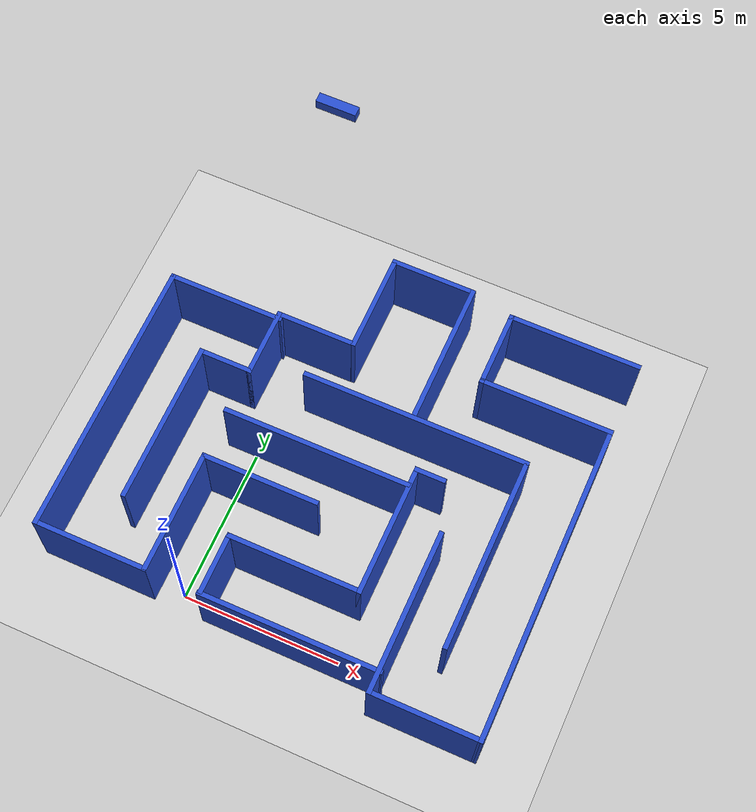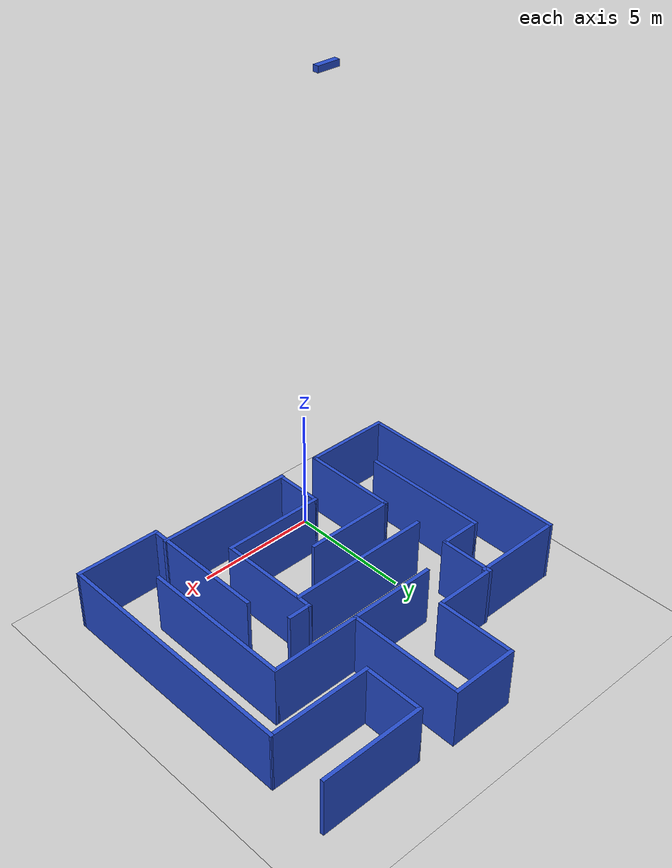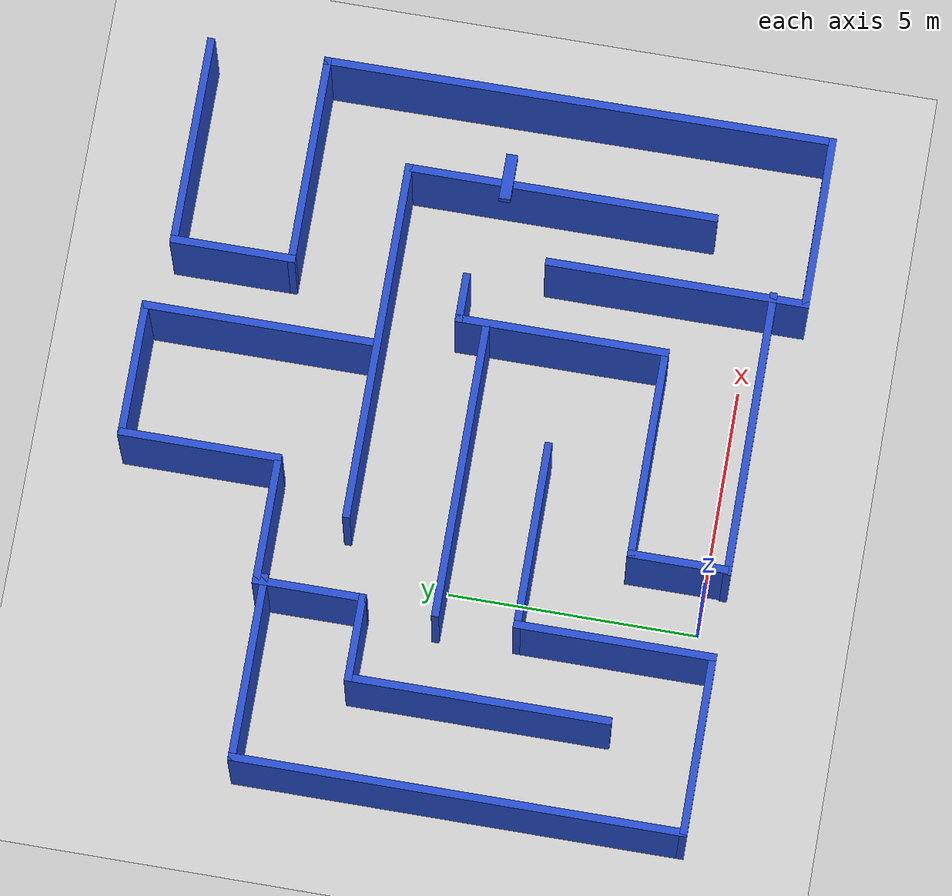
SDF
<sdf version="1.7">
 <world name="default">
  <light name="sun" type="directional">
   <cast_shadows>0</cast_shadows>
   <pose>0 0 10 0 -0 0</pose>
   <diffuse>0.8 0.8 0.8 1</diffuse>
   <specular>0.2 0.2 0.2 1</specular>
   <attenuation>
    <range>1000</range>
    <constant>0.9</constant>
    <linear>0.01</linear>
    <quadratic>0.001</quadratic>
   </attenuation>
   <direction>-0.5 0.1 -0.9</direction>
   <spot><inner_angle>0</inner_angle><outer_angle>0</outer_angle><falloff>0</falloff></spot>
  </light>
  <model name="ground_plane">
   <static>1</static>
   <link name="link">
    <collision name="collision">
     <geometry><plane><normal>0 0 1</normal><size>100 100</size></plane></geometry>
     <surface><friction><ode><mu>100</mu><mu2>50</mu2></ode></friction></surface>
    </collision>
    <visual name="visual">
     <cast_shadows>0</cast_shadows>
     <geometry><plane><normal>0 0 1</normal><size>100 100</size></plane></geometry>
     <material>
      <script><uri>file://media/materials/scripts/gazebo.material</uri><name>Gazebo/Grey</name></script>
     </material>
    </visual>
   </link>
  </model>
  <gravity>0 0 -9.8</gravity>
  <magnetic_field>6e-06 2.3e-05 -4.2e-05</magnetic_field>
  <atmosphere type="adiabatic"/>
  <physics type="ode">
   <max_step_size>0.001</max_step_size>
   <real_time_factor>1</real_time_factor>
   <real_time_update_rate>1000</real_time_update_rate>
  </physics>
  <scene><ambient>0 0 0.4 1</ambient><background>0.7 0.7 0.7 1</background><shadows>0</shadows></scene>
  <audio><device>default</device></audio>
  <spherical_coordinates>
   <surface_model>EARTH_WGS84</surface_model>
   <latitude_deg>0</latitude_deg>
   <longitude_deg>0</longitude_deg>
   <elevation>0</elevation>
   <heading_deg>0</heading_deg>
  </spherical_coordinates>
  <model name="maze">
   <pose>2.69462 5.36766 0 0 -0 0</pose>
   <link name="Wall_11">
    <collision name="Wall_11_Collision">
     <geometry><box><size>3.65748 0.15 2.5</size></box></geometry>
     <pose>0 0 1.25 0 -0 0</pose>
    </collision>
    <visual name="Wall_11_Visual">
     <pose>0 0 1.25 0 -0 0</pose>
     <geometry><box><size>3.65748 0.15 2.5</size></box></geometry>
     <material>
      <script><uri>file://media/materials/scripts/gazebo.material</uri><name>Gazebo/Blue</name></script>
      <ambient>1 1 1 1</ambient>
     </material>
     <meta><layer>0</layer></meta>
    </visual>
    <pose>-5.317 -5.72694 0 0 -0 0</pose>
   </link>
   <link name="Wall_14">
    <collision name="Wall_14_Collision">
     <geometry><box><size>4 0.15 2.5</size></box></geometry>
     <pose>0 0 1.25 0 -0 0</pose>
    </collision>
    <visual name="Wall_14_Visual">
     <pose>0 0 1.25 0 -0 0</pose>
     <geometry><box><size>4 0.15 2.5</size></box></geometry>
     <material>
      <script><uri>file://media/materials/scripts/gazebo.material</uri><name>Gazebo/Blue</name></script>
      <ambient>1 1 1 1</ambient>
     </material>
     <meta><layer>0</layer></meta>
    </visual>
    <pose>-3.56326 -3.80194 0 0 -0 1.5708</pose>
   </link>
   <link name="Wall_15">
    <collision name="Wall_15_Collision">
     <geometry><box><size>3.76148 0.15 2.5</size></box></geometry>
     <pose>0 0 1.25 0 -0 0</pose>
    </collision>
    <visual name="Wall_15_Visual">
     <pose>0 0 1.25 0 -0 0</pose>
     <geometry><box><size>3.76148 0.15 2.5</size></box></geometry>
     <material>
      <script><uri>file://media/materials/scripts/gazebo.material</uri><name>Gazebo/Blue</name></script>
      <ambient>1 1 1 1</ambient>
     </material>
     <meta><layer>0</layer></meta>
    </visual>
    <pose>-1.75753 -1.87694 0 0 -0 0</pose>
   </link>
   <link name="Wall_17">
    <collision name="Wall_17_Collision">
     <geometry><box><size>6 0.15 2.5</size></box></geometry>
     <pose>0 0 1.25 0 -0 0</pose>
    </collision>
    <visual name="Wall_17_Visual">
     <pose>0 0 1.25 0 -0 0</pose>
     <geometry><box><size>6 0.15 2.5</size></box></geometry>
     <material>
      <script><uri>file://media/materials/scripts/gazebo.material</uri><name>Gazebo/Blue</name></script>
      <ambient>1 1 1 1</ambient>
     </material>
     <meta><layer>0</layer></meta>
    </visual>
    <pose>-0.678491 -0.276937 0 0 -0 3.14159</pose>
   </link>
   <link name="Wall_20">
    <collision name="Wall_20_Collision">
     <geometry><box><size>2 0.15 2.5</size></box></geometry>
     <pose>0 0 1.25 0 -0 0</pose>
    </collision>
    <visual name="Wall_20_Visual">
     <pose>0 0 1.25 0 -0 0</pose>
     <geometry><box><size>2 0.15 2.5</size></box></geometry>
     <material>
      <script><uri>file://media/materials/scripts/gazebo.material</uri><name>Gazebo/Blue</name></script>
      <ambient>1 1 1 1</ambient>
     </material>
     <meta><layer>0</layer></meta>
    </visual>
    <pose>-1.80645 -4.75255 0 0 -0 1.5708</pose>
   </link>
   <link name="Wall_21">
    <collision name="Wall_21_Collision">
     <geometry><box><size>4.25 0.15 2.5</size></box></geometry>
     <pose>0 0 1.25 0 -0 0</pose>
    </collision>
    <visual name="Wall_21_Visual">
     <pose>0 0 1.25 0 -0 0</pose>
     <geometry><box><size>4.25 0.15 2.5</size></box></geometry>
     <material>
      <script><uri>file://media/materials/scripts/gazebo.material</uri><name>Gazebo/Blue</name></script>
      <ambient>1 1 1 1</ambient>
     </material>
     <meta><layer>0</layer></meta>
    </visual>
    <pose>0.24355 -3.82755 0 0 -0 0</pose>
   </link>
   <link name="Wall_22">
    <collision name="Wall_22_Collision">
     <geometry><box><size>4.25 0.15 2.5</size></box></geometry>
     <pose>0 0 1.25 0 -0 0</pose>
    </collision>
    <visual name="Wall_22_Visual">
     <pose>0 0 1.25 0 -0 0</pose>
     <geometry><box><size>4.25 0.15 2.5</size></box></geometry>
     <material>
      <script><uri>file://media/materials/scripts/gazebo.material</uri><name>Gazebo/Blue</name></script>
      <ambient>1 1 1 1</ambient>
     </material>
     <meta><layer>0</layer></meta>
    </visual>
    <pose>2.29355 -1.77755 0 0 -0 1.5708</pose>
   </link>
   <link name="Wall_23">
    <collision name="Wall_23_Collision">
     <geometry><box><size>1 0.15 2.5</size></box></geometry>
     <pose>0 0 1.25 0 -0 0</pose>
    </collision>
    <visual name="Wall_23_Visual">
     <pose>0 0 1.25 0 -0 0</pose>
     <geometry><box><size>1 0.15 2.5</size></box></geometry>
     <material>
      <script><uri>file://media/materials/scripts/gazebo.material</uri><name>Gazebo/Blue</name></script>
      <ambient>1 1 1 1</ambient>
     </material>
     <meta><layer>0</layer></meta>
    </visual>
    <pose>2.71855 0.272449 0 0 -0 0</pose>
   </link>
   <link name="Wall_25">
    <collision name="Wall_25_Collision">
     <geometry><box><size>5.25 0.15 2.5</size></box></geometry>
     <pose>0 0 1.25 0 -0 0</pose>
    </collision>
    <visual name="Wall_25_Visual">
     <pose>0 0 1.25 0 -0 0</pose>
     <geometry><box><size>5.25 0.15 2.5</size></box></geometry>
     <material>
      <script><uri>file://media/materials/scripts/gazebo.material</uri><name>Gazebo/Blue</name></script>
      <ambient>1 1 1 1</ambient>
     </material>
     <meta><layer>0</layer></meta>
    </visual>
    <pose>-5.1453 -1.37767 0 0 -0 1.5708</pose>
   </link>
   <link name="Wall_26">
    <collision name="Wall_26_Collision">
     <geometry><box><size>1.75 0.15 2.5</size></box></geometry>
     <pose>0 0 1.25 0 -0 0</pose>
    </collision>
    <visual name="Wall_26_Visual">
     <pose>0 0 1.25 0 -0 0</pose>
     <geometry><box><size>1.75 0.15 2.5</size></box></geometry>
     <material>
      <script><uri>file://media/materials/scripts/gazebo.material</uri><name>Gazebo/Blue</name></script>
      <ambient>1 1 1 1</ambient>
     </material>
     <meta><layer>0</layer></meta>
    </visual>
    <pose>-4.3453 1.17233 0 0 -0 0</pose>
   </link>
   <link name="Wall_27">
    <collision name="Wall_27_Collision">
     <geometry><box><size>2.25 0.15 2.5</size></box></geometry>
     <pose>0 0 1.25 0 -0 0</pose>
    </collision>
    <visual name="Wall_27_Visual">
     <pose>0 0 1.25 0 -0 0</pose>
     <geometry><box><size>2.25 0.15 2.5</size></box></geometry>
     <material>
      <script><uri>file://media/materials/scripts/gazebo.material</uri><name>Gazebo/Blue</name></script>
      <ambient>1 1 1 1</ambient>
     </material>
     <meta><layer>0</layer></meta>
    </visual>
    <pose>-3.5453 2.22233 0 0 -0 1.5708</pose>
   </link>
   <link name="Wall_28">
    <collision name="Wall_28_Collision">
     <geometry><box><size>2.5 0.15 2.5</size></box></geometry>
     <pose>0 0 1.25 0 -0 0</pose>
    </collision>
    <visual name="Wall_28_Visual">
     <pose>0 0 1.25 0 -0 0</pose>
     <geometry><box><size>2.5 0.15 2.5</size></box></geometry>
     <material>
      <script><uri>file://media/materials/scripts/gazebo.material</uri><name>Gazebo/Blue</name></script>
      <ambient>1 1 1 1</ambient>
     </material>
     <meta><layer>0</layer></meta>
    </visual>
    <pose>-2.3703 3.27233 0 0 -0 0</pose>
   </link>
   <link name="Wall_30">
    <collision name="Wall_30_Collision">
     <geometry><box><size>7.25 0.15 2.5</size></box></geometry>
     <pose>0 0 1.25 0 -0 0</pose>
    </collision>
    <visual name="Wall_30_Visual">
     <pose>0 0 1.25 0 -0 0</pose>
     <geometry><box><size>7.25 0.15 2.5</size></box></geometry>
     <material>
      <script><uri>file://media/materials/scripts/gazebo.material</uri><name>Gazebo/Blue</name></script>
      <ambient>1 1 1 1</ambient>
     </material>
     <meta><layer>0</layer></meta>
    </visual>
    <pose>1.59922 1.76712 0 0 -0 0</pose>
   </link>
   <link name="Wall_31">
    <collision name="Wall_31_Collision">
     <geometry><box><size>6.25 0.15 2.5</size></box></geometry>
     <pose>0 0 1.25 0 -0 0</pose>
    </collision>
    <visual name="Wall_31_Visual">
     <pose>0 0 1.25 0 -0 0</pose>
     <geometry><box><size>6.25 0.15 2.5</size></box></geometry>
     <material>
      <script><uri>file://media/materials/scripts/gazebo.material</uri><name>Gazebo/Blue</name></script>
      <ambient>1 1 1 1</ambient>
     </material>
     <meta><layer>0</layer></meta>
    </visual>
    <pose>5.14922 -1.28288 0 0 -0 -1.5708</pose>
   </link>
   <link name="Wall_33">
    <collision name="Wall_33_Collision">
     <geometry><box><size>5.25 0.15 2.5</size></box></geometry>
     <pose>0 0 1.25 0 -0 0</pose>
    </collision>
    <visual name="Wall_33_Visual">
     <pose>0 0 1.25 0 -0 0</pose>
     <geometry><box><size>5.25 0.15 2.5</size></box></geometry>
     <material>
      <script><uri>file://media/materials/scripts/gazebo.material</uri><name>Gazebo/Blue</name></script>
      <ambient>1 1 1 1</ambient>
     </material>
     <meta><layer>0</layer></meta>
    </visual>
    <pose>3.72048 -3.83252 0 0 -0 -1.5708</pose>
   </link>
   <link name="Wall_34">
    <collision name="Wall_34_Collision">
     <geometry><box><size>3.5 0.15 2.5</size></box></geometry>
     <pose>0 0 1.25 0 -0 0</pose>
    </collision>
    <visual name="Wall_34_Visual">
     <pose>0 0 1.25 0 -0 0</pose>
     <geometry><box><size>3.5 0.15 2.5</size></box></geometry>
     <material>
      <script><uri>file://media/materials/scripts/gazebo.material</uri><name>Gazebo/Blue</name></script>
      <ambient>1 1 1 1</ambient>
     </material>
     <meta><layer>0</layer></meta>
    </visual>
    <pose>5.39548 -6.38253 0 0 -0 0</pose>
   </link>
   <link name="Wall_35">
    <collision name="Wall_35_Collision">
     <geometry><box><size>10.25 0.15 2.5</size></box></geometry>
     <pose>0 0 1.25 0 -0 0</pose>
    </collision>
    <visual name="Wall_35_Visual">
     <pose>0 0 1.25 0 -0 0</pose>
     <geometry><box><size>10.25 0.15 2.5</size></box></geometry>
     <material>
      <script><uri>file://media/materials/scripts/gazebo.material</uri><name>Gazebo/Blue</name></script>
      <ambient>1 1 1 1</ambient>
     </material>
     <meta><layer>0</layer></meta>
    </visual>
    <pose>7.05299 -1.33253 0 0 -0 1.57426</pose>
   </link>
   <link name="Wall_39">
    <collision name="Wall_39_Collision">
     <geometry><box><size>4.25 0.15 2.5</size></box></geometry>
     <pose>0 0 1.25 0 -0 0</pose>
    </collision>
    <visual name="Wall_39_Visual">
     <pose>0 0 1.25 0 -0 0</pose>
     <geometry><box><size>4.25 0.15 2.5</size></box></geometry>
     <material>
      <script><uri>file://media/materials/scripts/gazebo.material</uri><name>Gazebo/Blue</name></script>
      <ambient>1 1 1 1</ambient>
     </material>
     <meta><layer>0</layer></meta>
    </visual>
    <pose>4.9855 3.71747 0 0 -0 3.14159</pose>
   </link>
   <link name="Wall_40">
    <collision name="Wall_40_Collision">
     <geometry><box><size>2.5 0.15 2.5</size></box></geometry>
     <pose>0 0 1.25 0 -0 0</pose>
    </collision>
    <visual name="Wall_40_Visual">
     <pose>0 0 1.25 0 -0 0</pose>
     <geometry><box><size>2.5 0.15 2.5</size></box></geometry>
     <material>
      <script><uri>file://media/materials/scripts/gazebo.material</uri><name>Gazebo/Blue</name></script>
      <ambient>1 1 1 1</ambient>
     </material>
     <meta><layer>0</layer></meta>
    </visual>
    <pose>2.9355 4.89247 0 0 -0 1.5708</pose>
   </link>
   <link name="Wall_41">
    <collision name="Wall_41_Collision">
     <geometry><box><size>4.25 0.15 2.5</size></box></geometry>
     <pose>0 0 1.25 0 -0 0</pose>
    </collision>
    <visual name="Wall_41_Visual">
     <pose>0 0 1.25 0 -0 0</pose>
     <geometry><box><size>4.25 0.15 2.5</size></box></geometry>
     <material>
      <script><uri>file://media/materials/scripts/gazebo.material</uri><name>Gazebo/Blue</name></script>
      <ambient>1 1 1 1</ambient>
     </material>
     <meta><layer>0</layer></meta>
    </visual>
    <pose>4.9855 6.06747 0 0 -0 0</pose>
   </link>
   <link name="Wall_43">
    <collision name="Wall_43_Collision">
     <geometry><box><size>3.25 0.15 2.5</size></box></geometry>
     <pose>0 0 1.25 0 -0 0</pose>
    </collision>
    <visual name="Wall_43_Visual">
     <pose>0 0 1.25 0 -0 0</pose>
     <geometry><box><size>3.25 0.15 2.5</size></box></geometry>
     <material>
      <script><uri>file://media/materials/scripts/gazebo.material</uri><name>Gazebo/Blue</name></script>
      <ambient>1 1 1 1</ambient>
     </material>
     <meta><layer>0</layer></meta>
    </visual>
    <pose>-1.06604 4.83275 0 0 -0 1.5708</pose>
   </link>
   <link name="Wall_44">
    <collision name="Wall_44_Collision">
     <geometry><box><size>2.75 0.15 2.5</size></box></geometry>
     <pose>0 0 1.25 0 -0 0</pose>
    </collision>
    <visual name="Wall_44_Visual">
     <pose>0 0 1.25 0 -0 0</pose>
     <geometry><box><size>2.75 0.15 2.5</size></box></geometry>
     <material>
      <script><uri>file://media/materials/scripts/gazebo.material</uri><name>Gazebo/Blue</name></script>
      <ambient>1 1 1 1</ambient>
     </material>
     <meta><layer>0</layer></meta>
    </visual>
    <pose>0.233956 6.38276 0 0 -0 0</pose>
   </link>
   <link name="Wall_45">
    <collision name="Wall_45_Collision">
     <geometry><box><size>4.75 0.15 2.5</size></box></geometry>
     <pose>0 0 1.25 0 -0 0</pose>
    </collision>
    <visual name="Wall_45_Visual">
     <pose>0 0 1.25 0 -0 0</pose>
     <geometry><box><size>4.75 0.15 2.5</size></box></geometry>
     <material>
      <script><uri>file://media/materials/scripts/gazebo.material</uri><name>Gazebo/Blue</name></script>
      <ambient>1 1 1 1</ambient>
     </material>
     <meta><layer>0</layer></meta>
    </visual>
    <pose>1.53396 4.08275 0 0 -0 -1.5708</pose>
   </link>
   <link name="Wall_47">
    <collision name="Wall_47_Collision">
     <geometry><box><size>9 0.15 2.5</size></box></geometry>
     <pose>0 0 1.25 0 -0 0</pose>
    </collision>
    <visual name="Wall_47_Visual">
     <pose>0 0 1.25 0 -0 0</pose>
     <geometry><box><size>9 0.15 2.5</size></box></geometry>
     <material>
      <script><uri>file://media/materials/scripts/gazebo.material</uri><name>Gazebo/Blue</name></script>
      <ambient>1 1 1 1</ambient>
     </material>
     <meta><layer>0</layer></meta>
    </visual>
    <pose>-7.07074 -1.30194 0 0 -0 1.5708</pose>
   </link>
   <link name="Wall_48">
    <collision name="Wall_48_Collision">
     <geometry><box><size>3.75 0.15 2.5</size></box></geometry>
     <pose>0 0 1.25 0 -0 0</pose>
    </collision>
    <visual name="Wall_48_Visual">
     <pose>0 0 1.25 0 -0 0</pose>
     <geometry><box><size>3.75 0.15 2.5</size></box></geometry>
     <material>
      <script><uri>file://media/materials/scripts/gazebo.material</uri><name>Gazebo/Blue</name></script>
      <ambient>1 1 1 1</ambient>
     </material>
     <meta><layer>0</layer></meta>
    </visual>
    <pose>-5.27074 3.12306 0 0 -0 0</pose>
   </link>
   <link name="Wall_50">
    <collision name="Wall_50_Collision">
     <geometry><box><size>5.75 0.15 2.5</size></box></geometry>
     <pose>0 0 1.25 0 -0 0</pose>
    </collision>
    <visual name="Wall_50_Visual">
     <pose>0 0 1.25 0 -0 0</pose>
     <geometry><box><size>5.75 0.15 2.5</size></box></geometry>
     <material>
      <script><uri>file://media/materials/scripts/gazebo.material</uri><name>Gazebo/Blue</name></script>
      <ambient>1 1 1 1</ambient>
     </material>
     <meta><layer>0</layer></meta>
    </visual>
    <pose>0.969395 -5.73302 0 0 -0 3.14159</pose>
   </link>
   <static>1</static>
  </model>
  <model name="Untitled">
   <link name="link_0">
    <inertial>
     <mass>1</mass>
     <inertia>
      <ixx>0.166667</ixx>
      <ixy>0</ixy>
      <ixz>0</ixz>
      <iyy>0.166667</iyy>
      <iyz>0</iyz>
      <izz>0.166667</izz>
     </inertia>
    </inertial>
    <pose>-1e-06 4e-06 4e-06 0 -0 0</pose>
    <visual name="visual">
     <geometry><box><size>0.8 0.2 0.2</size></box></geometry>
     <material>
      <lighting>1</lighting>
      <script><uri>file://media/materials/scripts/gazebo.material</uri><name>Gazebo/Blue</name></script>
      <shader type="pixel"><normal_map>__default__</normal_map></shader>
      <ambient>0 0 0.3 1</ambient>
      <diffuse>0.7 0.7 0.7 1</diffuse>
      <specular>0.01 0.01 0.01 1</specular>
      <emissive>0 0 0 1</emissive>
     </material>
     <cast_shadows>0</cast_shadows>
    </visual>
    <collision name="collision">
     <geometry><box><size>0.8 0.2 0.2</size></box></geometry>
     <surface>
      <friction>
       <ode><mu>1</mu><mu2>1</mu2><fdir1>0 0 0</fdir1><slip1>0</slip1><slip2>0</slip2></ode>
       <torsional>
        <coefficient>1</coefficient>
        <patch_radius>0</patch_radius>
        <surface_radius>0</surface_radius>
        <use_patch_radius>1</use_patch_radius>
        <ode><slip>0</slip></ode>
       </torsional>
      </friction>
      <bounce><restitution_coefficient>0</restitution_coefficient><threshold>1e+06</threshold></bounce>
      <contact>
       <collide_without_contact>0</collide_without_contact>
       <collide_without_contact_bitmask>1</collide_without_contact_bitmask>
       <collide_bitmask>1</collide_bitmask>
       <ode>
        <soft_cfm>0</soft_cfm>
        <soft_erp>0.2</soft_erp>
        <kp>1e+13</kp>
        <kd>1</kd>
        <max_vel>0.01</max_vel>
        <min_depth>0</min_depth>
       </ode>
       <bullet>
        <split_impulse>1</split_impulse>
        <split_impulse_penetration_threshold>-0.01</split_impulse_penetration_threshold>
        <soft_cfm>0</soft_cfm>
        <soft_erp>0.2</soft_erp>
        <kp>1e+13</kp>
        <kd>1</kd>
       </bullet>
      </contact>
     </surface>
    </collision>
    <sensor name="world_camera" type="camera">
     <pose>0 0 0 0 1.57 0</pose>
     <update_rate>30</update_rate>
     <visualize>1</visualize>
     <camera name="head">
      <horizontal_fov>1.39626</horizontal_fov>
      <image><width>1280</width><height>720</height><format>R8G8B8</format></image>
      <clip><near>0.02</near><far>300</far></clip>
      <noise><type>gaussian</type><mean>0</mean><stddev>0.007</stddev></noise>
     </camera>
     <plugin name="camera_controller" filename="libgazebo_ros_camera.so">
      <alwaysOn>1</alwaysOn>
      <updateRate>0.0</updateRate>
      <cameraName>maze/world_camera</cameraName>
      <imageTopicName>image_raw</imageTopicName>
      <cameraInfoTopicName>camera_info</cameraInfoTopicName>
      <frameName>camera_link</frameName>
      <hackBaseline>0.07</hackBaseline>
      <distortionK1>0.0</distortionK1>
      <distortionK2>0.0</distortionK2>
      <distortionK3>0.0</distortionK3>
      <distortionT1>0.0</distortionT1>
      <distortionT2>0.0</distortionT2>
     </plugin>
    </sensor>
   </link>
   <static>1</static>
   <pose>3.078 4.40273 20.3598 0 -0 0</pose>
  </model>
 </world>
</sdf>
